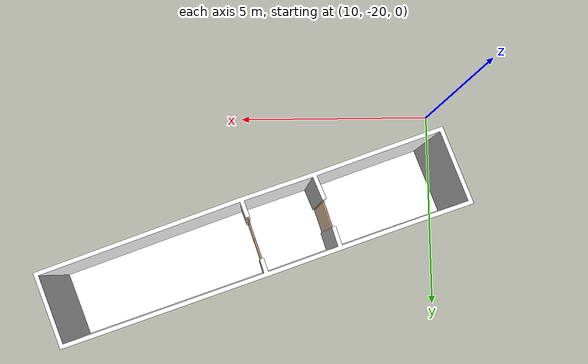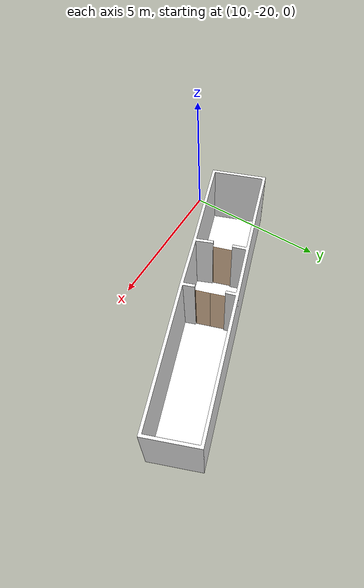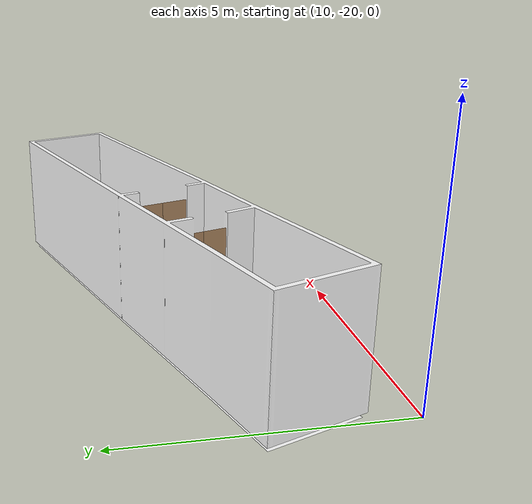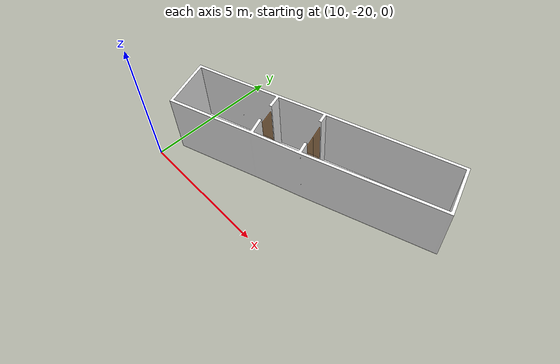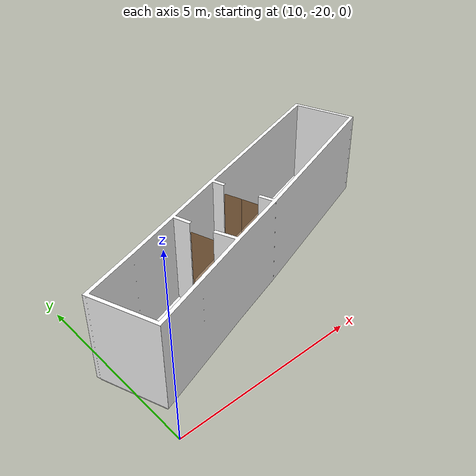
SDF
<sdf version="1.7">
 <world name="world">
  <scene><ambient>0.8 0.8 0.8 1.0</ambient><background>0 0 0</background><grid>false</grid></scene>
  <include><uri>model://sun</uri></include>
  <model name="door_2">
   <pose>14.700056724053372 -16.671413833786673 0.0 0 0 1.88443824384381</pose>
   <link name="right">
    <pose>0.2758343081659584 0 1.11 0 0 0</pose>
    <visual name="right_visual">
     <geometry><box><size>0.5416686163319168 0.03 2.2</size></box></geometry>
     <material><ambient>0.5 0.25 0 0.6</ambient><diffuse>0.5 0.25 0 0.6</diffuse></material>
    </visual>
    <collision name="right_collision">
     <geometry><box><size>0.5416686163319168 0.03 2.2</size></box></geometry>
     <surface><contact><collide_bitmask>0x02</collide_bitmask></contact></surface>
    </collision>
    <inertial>
     <mass>50.0</mass>
     <inertia><ixx>20.17041666666667</ixx><iyy>21.389187041328892</iyy><izz>1.226270374662222</izz></inertia>
    </inertial>
   </link>
   <joint name="right_joint" type="revolute">
    <parent>world</parent>
    <child>right</child>
    <axis><xyz>0 0 -1</xyz><limit><lower>0</lower><upper>1.57</upper></limit></axis>
    <pose>0.2758343081659584 0 0 0 0 0</pose>
   </joint>
   <link name="left">
    <pose>-0.2758343081659584 0 1.11 0 0 0</pose>
    <visual name="left_visual">
     <geometry><box><size>0.5416686163319168 0.03 2.2</size></box></geometry>
     <material><ambient>0.5 0.25 0 0.6</ambient><diffuse>0.5 0.25 0 0.6</diffuse></material>
    </visual>
    <collision name="left_collision">
     <geometry><box><size>0.5416686163319168 0.03 2.2</size></box></geometry>
     <surface><contact><collide_bitmask>0x02</collide_bitmask></contact></surface>
    </collision>
    <inertial>
     <mass>50.0</mass>
     <inertia><ixx>20.17041666666667</ixx><iyy>21.389187041328892</iyy><izz>1.226270374662222</izz></inertia>
    </inertial>
   </link>
   <joint name="left_joint" type="revolute">
    <parent>world</parent>
    <child>left</child>
    <axis><xyz>0 0 -1</xyz><limit><lower>-1.57</lower><upper>0</upper></limit></axis>
    <pose>-0.2758343081659584 0 0 0 0 0</pose>
   </joint>
   <plugin name="door" filename="libdoor.so">
    <v_max_door>0.5</v_max_door>
    <a_max_door>0.3</a_max_door>
    <a_nom_door>0.15</a_nom_door>
    <dx_min_door>0.01</dx_min_door>
    <f_max_door>500.0</f_max_door>
    <door name="door_2" type="DoubleSwingDoor" left_joint_name="left_joint" right_joint_name="right_joint"/>
   </plugin>
  </model>
  <model name="door_1">
   <pose>12.980780965261257 -17.221386061823882 0.0 0 0 1.8797132726522827</pose>
   <link name="right">
    <pose>0 0 1.11 0 0 0</pose>
    <visual name="right_visual">
     <geometry><box><size>0.7477513144198973 0.03 2.2</size></box></geometry>
     <material><ambient>0.5 0.25 0 0.6</ambient><diffuse>0.5 0.25 0 0.6</diffuse></material>
    </visual>
    <collision name="right_collision">
     <geometry><box><size>0.7477513144198973 0.03 2.2</size></box></geometry>
     <surface><contact><collide_bitmask>0x02</collide_bitmask></contact></surface>
    </collision>
    <inertial>
     <mass>50.0</mass>
     <inertia><ixx>20.17041666666667</ixx><iyy>22.496383450902854</iyy><izz>2.3334667842361836</izz></inertia>
    </inertial>
   </link>
   <joint name="right_joint" type="revolute">
    <parent>world</parent>
    <child>right</child>
    <axis><xyz>0 0 -1</xyz><limit><lower>0</lower><upper>1.57</upper></limit></axis>
    <pose>0.37887565720994865 0 0 0 0 0</pose>
   </joint>
   <plugin name="door" filename="libdoor.so">
    <v_max_door>0.5</v_max_door>
    <a_max_door>0.3</a_max_door>
    <a_nom_door>0.15</a_nom_door>
    <dx_min_door>0.01</dx_min_door>
    <f_max_door>500.0</f_max_door>
    <door name="door_1" type="SwingDoor" left_joint_name="empty_joint" right_joint_name="right_joint"/>
   </plugin>
  </model>
  <include><name>new_new</name><uri>model://new_new</uri></include>
  <rmf_charger_waypoints name="charger_waypoints"/>
 </world>
</sdf>

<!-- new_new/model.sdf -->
<sdf version="1.7">
  <model name="new_new">
    <static>true</static>
    <link name="floor_1">
      <visual name="visual">
        <geometry>
          <mesh>
            <uri>model://new_new/meshes/floor_1.obj</uri>
          </mesh>
        </geometry>
        <material>
          <diffuse>1.0 1.0 1.0</diffuse>
          <specular>0.1 0.1 0.1</specular>
          <pbr>
            <metal>
              <metalness>0.0</metalness>
              <albedo_map>model://new_new/meshes/blue_linoleum.png</albedo_map>
            </metal>
          </pbr>
          <script>
            <uri>model://new_new/meshes/</uri>
            <name>floor_1_Diffuse</name>
          </script>
        </material>
      </visual>
      <collision name="collision">
        <geometry>
          <mesh>
            <uri>model://new_new/meshes/floor_1.obj</uri>
          </mesh>
        </geometry>
        <surface>
          <contact>
            <collide_bitmask>0x01</collide_bitmask>
          </contact>
        </surface>
      </collision>
    </link>
    <link name="wall_1">
      <visual name="wall_1">
        <geometry>
          <mesh>
            <uri>model://new_new/meshes/wall_1.obj</uri>
          </mesh>
        </geometry>
        <material>
          <diffuse>1.0 1.0 1.0</diffuse>
          <specular>0.1 0.1 0.1</specular>
          <pbr>
            <metal>
              <metalness>0.0</metalness>
              <albedo_map>model://new_new/meshes/default.png</albedo_map>
            </metal>
          </pbr>
          <script>
            <uri>model://new_new/meshes/</uri>
            <name>wall_1_Diffuse</name>
          </script>
        </material>
      </visual>
      <collision name="collision">
        <geometry>
          <mesh>
            <uri>model://new_new/meshes/wall_1.obj</uri>
          </mesh>
        </geometry>
        <surface>
          <contact>
            <collide_bitmask>0x01</collide_bitmask>
          </contact>
        </surface>
      </collision>
      <pose>9.637440194752784 -19.213117655914086 0 0 0 0</pose>
    </link>
  </model>
</sdf>
